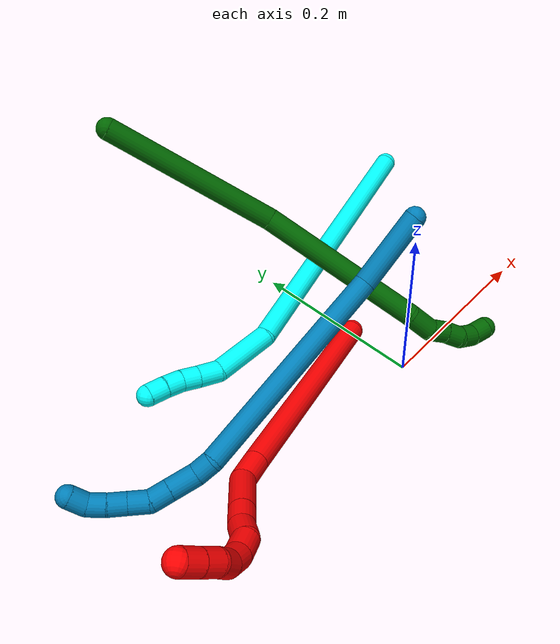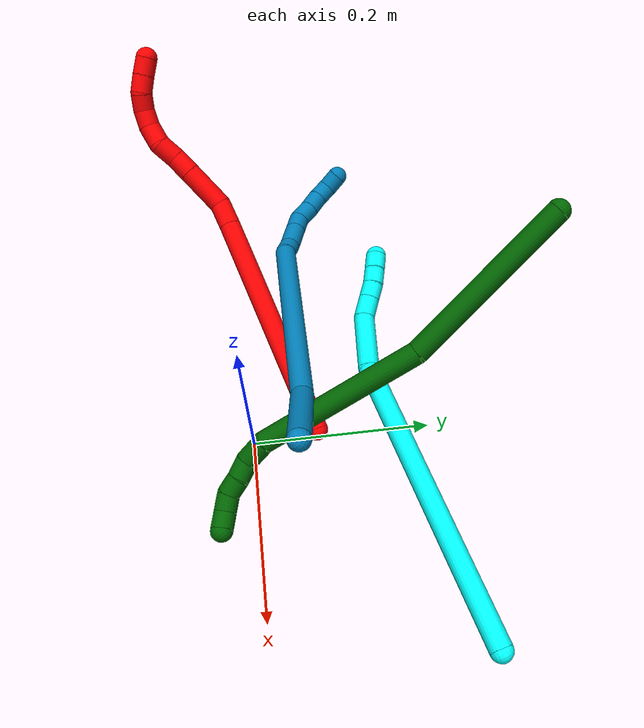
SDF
<sdf version="1.7">
 <world name="default">
  <model name="2">
   <static>0</static>
   <link name="2">
    <collision name="collision-cylinder-e_1_1_4">
     <pose>-0.053926 -0.037985 0.115306 0.318231 -0.418017 -0.068048</pose>
     <geometry><cylinder><radius>0.0125</radius><length>0.265679</length></cylinder></geometry>
     <surface>
      <friction><ode><mu>1.16</mu><mu2>1.16</mu2><slip1>0</slip1><slip2>0</slip2></ode></friction>
      <contact><ode><kp>1e+06</kp><kd>1</kd><max_vel>0</max_vel><min_depth>0.001</min_depth></ode></contact>
     </surface>
    </collision>
    <visual name="visual-cylinder-e_1_1_4">
     <pose>-0.053926 -0.037985 0.115306 0.318231 -0.418017 -0.068048</pose>
     <geometry><cylinder><radius>0.0125</radius><length>0.265679</length></cylinder></geometry>
     <material><ambient>1 0 0 1</ambient></material>
    </visual>
    <collision name="collision-cylinder-e_2_4_5">
     <pose>-0.113852 -0.079916 0.243624 0.294497 -0.415581 -0.062522</pose>
     <geometry><cylinder><radius>0.0125</radius><length>0.029725</length></cylinder></geometry>
     <surface>
      <friction><ode><mu>1.16</mu><mu2>1.16</mu2><slip1>0</slip1><slip2>0</slip2></ode></friction>
      <contact><ode><kp>1e+06</kp><kd>1</kd><max_vel>0</max_vel><min_depth>0.001</min_depth></ode></contact>
     </surface>
    </collision>
    <visual name="visual-cylinder-e_2_4_5">
     <pose>-0.113852 -0.079916 0.243624 0.294497 -0.415581 -0.062522</pose>
     <geometry><cylinder><radius>0.0125</radius><length>0.029725</length></cylinder></geometry>
     <material><ambient>1 0 0 1</ambient></material>
    </visual>
    <collision name="collision-cylinder-e_3_5_6">
     <pose>-0.134971 -0.080459 0.27771 -0.160135 -0.616204 0.051059</pose>
     <geometry><cylinder><radius>0.0125</radius><length>0.052317</length></cylinder></geometry>
     <surface>
      <friction><ode><mu>1.16</mu><mu2>1.16</mu2><slip1>0</slip1><slip2>0</slip2></ode></friction>
      <contact><ode><kp>1e+06</kp><kd>1</kd><max_vel>0</max_vel><min_depth>0.001</min_depth></ode></contact>
     </surface>
    </collision>
    <visual name="visual-cylinder-e_3_5_6">
     <pose>-0.134971 -0.080459 0.27771 -0.160135 -0.616204 0.051059</pose>
     <geometry><cylinder><radius>0.0125</radius><length>0.052317</length></cylinder></geometry>
     <material><ambient>1 0 0 1</ambient></material>
    </visual>
    <collision name="collision-cylinder-e_4_6_7">
     <pose>-0.15673 -0.075455 0.308593 -0.161731 -0.589112 0.049163</pose>
     <geometry><cylinder><radius>0.0125</radius><length>0.023907</length></cylinder></geometry>
     <surface>
      <friction><ode><mu>1.16</mu><mu2>1.16</mu2><slip1>0</slip1><slip2>0</slip2></ode></friction>
      <contact><ode><kp>1e+06</kp><kd>1</kd><max_vel>0</max_vel><min_depth>0.001</min_depth></ode></contact>
     </surface>
    </collision>
    <visual name="visual-cylinder-e_4_6_7">
     <pose>-0.15673 -0.075455 0.308593 -0.161731 -0.589112 0.049163</pose>
     <geometry><cylinder><radius>0.0125</radius><length>0.023907</length></cylinder></geometry>
     <material><ambient>1 0 0 1</ambient></material>
    </visual>
    <collision name="collision-cylinder-e_5_7_8">
     <pose>-0.171203 -0.070571 0.327071 -0.362097 -0.701468 0.133744</pose>
     <geometry><cylinder><radius>0.0125</radius><length>0.024271</length></cylinder></geometry>
     <surface>
      <friction><ode><mu>1.16</mu><mu2>1.16</mu2><slip1>0</slip1><slip2>0</slip2></ode></friction>
      <contact><ode><kp>1e+06</kp><kd>1</kd><max_vel>0</max_vel><min_depth>0.001</min_depth></ode></contact>
     </surface>
    </collision>
    <visual name="visual-cylinder-e_5_7_8">
     <pose>-0.171203 -0.070571 0.327071 -0.362097 -0.701468 0.133744</pose>
     <geometry><cylinder><radius>0.0125</radius><length>0.024271</length></cylinder></geometry>
     <material><ambient>1 0 0 1</ambient></material>
    </visual>
    <collision name="collision-cylinder-e_6_8_9">
     <pose>-0.185494 -0.068885 0.345581 0.160946 -0.574885 -0.047674</pose>
     <geometry><cylinder><radius>0.0125</radius><length>0.023758</length></cylinder></geometry>
     <surface>
      <friction><ode><mu>1.16</mu><mu2>1.16</mu2><slip1>0</slip1><slip2>0</slip2></ode></friction>
      <contact><ode><kp>1e+06</kp><kd>1</kd><max_vel>0</max_vel><min_depth>0.001</min_depth></ode></contact>
     </surface>
    </collision>
    <visual name="visual-cylinder-e_6_8_9">
     <pose>-0.185494 -0.068885 0.345581 0.160946 -0.574885 -0.047674</pose>
     <geometry><cylinder><radius>0.0125</radius><length>0.023758</length></cylinder></geometry>
     <material><ambient>1 0 0 1</ambient></material>
    </visual>
    <collision name="collision-cylinder-e_7_9_10">
     <pose>-0.199145 -0.073306 0.361899 0.411063 -0.794172 -0.17441</pose>
     <geometry><cylinder><radius>0.0125</radius><length>0.020165</length></cylinder></geometry>
     <surface>
      <friction><ode><mu>1.16</mu><mu2>1.16</mu2><slip1>0</slip1><slip2>0</slip2></ode></friction>
      <contact><ode><kp>1e+06</kp><kd>1</kd><max_vel>0</max_vel><min_depth>0.001</min_depth></ode></contact>
     </surface>
    </collision>
    <visual name="visual-cylinder-e_7_9_10">
     <pose>-0.199145 -0.073306 0.361899 0.411063 -0.794172 -0.17441</pose>
     <geometry><cylinder><radius>0.0125</radius><length>0.020165</length></cylinder></geometry>
     <material><ambient>1 0 0 1</ambient></material>
    </visual>
    <collision name="collision-cylinder-e_8_10_11">
     <pose>-0.215204 -0.079478 0.371568 0.809365 -1.09002 -0.508127</pose>
     <geometry><cylinder><radius>0.0125</radius><length>0.020003</length></cylinder></geometry>
     <surface>
      <friction><ode><mu>1.16</mu><mu2>1.16</mu2><slip1>0</slip1><slip2>0</slip2></ode></friction>
      <contact><ode><kp>1e+06</kp><kd>1</kd><max_vel>0</max_vel><min_depth>0.001</min_depth></ode></contact>
     </surface>
    </collision>
    <visual name="visual-cylinder-e_8_10_11">
     <pose>-0.215204 -0.079478 0.371568 0.809365 -1.09002 -0.508127</pose>
     <geometry><cylinder><radius>0.0125</radius><length>0.020003</length></cylinder></geometry>
     <material><ambient>1 0 0 1</ambient></material>
    </visual>
    <collision name="collision-cylinder-e_9_11_12">
     <pose>-0.230961 -0.089163 0.378314 1.0597 -0.758844 -0.458872</pose>
     <geometry><cylinder><radius>0.0125</radius><length>0.020025</length></cylinder></geometry>
     <surface>
      <friction><ode><mu>1.16</mu><mu2>1.16</mu2><slip1>0</slip1><slip2>0</slip2></ode></friction>
      <contact><ode><kp>1e+06</kp><kd>1</kd><max_vel>0</max_vel><min_depth>0.001</min_depth></ode></contact>
     </surface>
    </collision>
    <visual name="visual-cylinder-e_9_11_12">
     <pose>-0.230961 -0.089163 0.378314 1.0597 -0.758844 -0.458872</pose>
     <geometry><cylinder><radius>0.0125</radius><length>0.020025</length></cylinder></geometry>
     <material><ambient>1 0 0 1</ambient></material>
    </visual>
    <collision name="collision-cylinder-e_10_12_2">
     <pose>-0.244588 -0.102273 0.385069 1.12929 -0.732405 -0.476615</pose>
     <geometry><cylinder><radius>0.0125</radius><length>0.02015</length></cylinder></geometry>
     <surface>
      <friction><ode><mu>1.16</mu><mu2>1.16</mu2><slip1>0</slip1><slip2>0</slip2></ode></friction>
      <contact><ode><kp>1e+06</kp><kd>1</kd><max_vel>0</max_vel><min_depth>0.001</min_depth></ode></contact>
     </surface>
    </collision>
    <visual name="visual-cylinder-e_10_12_2">
     <pose>-0.244588 -0.102273 0.385069 1.12929 -0.732405 -0.476615</pose>
     <geometry><cylinder><radius>0.0125</radius><length>0.02015</length></cylinder></geometry>
     <material><ambient>1 0 0 1</ambient></material>
    </visual>
    <collision name="collision-sphere-2">
     <pose>-0.251325 -0.109047 0.38827 0 -0 0</pose>
     <geometry><sphere><radius>0.0125</radius></sphere></geometry>
     <surface>
      <friction><ode><mu>1.16</mu><mu2>1.16</mu2><slip1>0</slip1><slip2>0</slip2></ode></friction>
      <contact><ode><kp>1e+06</kp><kd>1</kd><max_vel>0</max_vel><min_depth>0.001</min_depth></ode></contact>
     </surface>
    </collision>
    <visual name="visual-sphere-2">
     <pose>-0.251325 -0.109047 0.38827 0 -0 0</pose>
     <geometry><sphere><radius>0.0125</radius></sphere></geometry>
     <material><ambient>1 0 0 1</ambient></material>
    </visual>
    <collision name="collision-sphere-12">
     <pose>-0.237851 -0.0955 0.381867 0 -0 0</pose>
     <geometry><sphere><radius>0.0125</radius></sphere></geometry>
     <surface>
      <friction><ode><mu>1.16</mu><mu2>1.16</mu2><slip1>0</slip1><slip2>0</slip2></ode></friction>
      <contact><ode><kp>1e+06</kp><kd>1</kd><max_vel>0</max_vel><min_depth>0.001</min_depth></ode></contact>
     </surface>
    </collision>
    <visual name="visual-sphere-12">
     <pose>-0.237851 -0.0955 0.381867 0 -0 0</pose>
     <geometry><sphere><radius>0.0125</radius></sphere></geometry>
     <material><ambient>1 0 0 1</ambient></material>
    </visual>
    <collision name="collision-sphere-11">
     <pose>-0.224072 -0.082826 0.37476 0 -0 0</pose>
     <geometry><sphere><radius>0.0125</radius></sphere></geometry>
     <surface>
      <friction><ode><mu>1.16</mu><mu2>1.16</mu2><slip1>0</slip1><slip2>0</slip2></ode></friction>
      <contact><ode><kp>1e+06</kp><kd>1</kd><max_vel>0</max_vel><min_depth>0.001</min_depth></ode></contact>
     </surface>
    </collision>
    <visual name="visual-sphere-11">
     <pose>-0.224072 -0.082826 0.37476 0 -0 0</pose>
     <geometry><sphere><radius>0.0125</radius></sphere></geometry>
     <material><ambient>1 0 0 1</ambient></material>
    </visual>
    <collision name="collision-sphere-10">
     <pose>-0.206336 -0.07613 0.368377 0 -0 0</pose>
     <geometry><sphere><radius>0.0125</radius></sphere></geometry>
     <surface>
      <friction><ode><mu>1.16</mu><mu2>1.16</mu2><slip1>0</slip1><slip2>0</slip2></ode></friction>
      <contact><ode><kp>1e+06</kp><kd>1</kd><max_vel>0</max_vel><min_depth>0.001</min_depth></ode></contact>
     </surface>
    </collision>
    <visual name="visual-sphere-10">
     <pose>-0.206336 -0.07613 0.368377 0 -0 0</pose>
     <geometry><sphere><radius>0.0125</radius></sphere></geometry>
     <material><ambient>1 0 0 1</ambient></material>
    </visual>
    <collision name="collision-sphere-9">
     <pose>-0.191953 -0.070483 0.355421 0 -0 0</pose>
     <geometry><sphere><radius>0.0125</radius></sphere></geometry>
     <surface>
      <friction><ode><mu>1.16</mu><mu2>1.16</mu2><slip1>0</slip1><slip2>0</slip2></ode></friction>
      <contact><ode><kp>1e+06</kp><kd>1</kd><max_vel>0</max_vel><min_depth>0.001</min_depth></ode></contact>
     </surface>
    </collision>
    <visual name="visual-sphere-9">
     <pose>-0.191953 -0.070483 0.355421 0 -0 0</pose>
     <geometry><sphere><radius>0.0125</radius></sphere></geometry>
     <material><ambient>1 0 0 1</ambient></material>
    </visual>
    <collision name="collision-sphere-4">
     <pose>-0.107852 -0.07597 0.230612 0 -0 0</pose>
     <geometry><sphere><radius>0.0125</radius></sphere></geometry>
     <surface>
      <friction><ode><mu>1.16</mu><mu2>1.16</mu2><slip1>0</slip1><slip2>0</slip2></ode></friction>
      <contact><ode><kp>1e+06</kp><kd>1</kd><max_vel>0</max_vel><min_depth>0.001</min_depth></ode></contact>
     </surface>
    </collision>
    <visual name="visual-sphere-4">
     <pose>-0.107852 -0.07597 0.230612 0 -0 0</pose>
     <geometry><sphere><radius>0.0125</radius></sphere></geometry>
     <material><ambient>1 0 0 1</ambient></material>
    </visual>
    <collision name="collision-sphere-1">
     <geometry><sphere><radius>0.0125</radius></sphere></geometry>
     <surface>
      <friction><ode><mu>1.16</mu><mu2>1.16</mu2><slip1>0</slip1><slip2>0</slip2></ode></friction>
      <contact><ode><kp>1e+06</kp><kd>1</kd><max_vel>0</max_vel><min_depth>0.001</min_depth></ode></contact>
     </surface>
    </collision>
    <visual name="visual-sphere-1">
     <geometry><sphere><radius>0.0125</radius></sphere></geometry>
     <material><ambient>1 0 0 1</ambient></material>
    </visual>
    <collision name="collision-sphere-8">
     <pose>-0.179035 -0.067287 0.33574 0 -0 0</pose>
     <geometry><sphere><radius>0.0125</radius></sphere></geometry>
     <surface>
      <friction><ode><mu>1.16</mu><mu2>1.16</mu2><slip1>0</slip1><slip2>0</slip2></ode></friction>
      <contact><ode><kp>1e+06</kp><kd>1</kd><max_vel>0</max_vel><min_depth>0.001</min_depth></ode></contact>
     </surface>
    </collision>
    <visual name="visual-sphere-8">
     <pose>-0.179035 -0.067287 0.33574 0 -0 0</pose>
     <geometry><sphere><radius>0.0125</radius></sphere></geometry>
     <material><ambient>1 0 0 1</ambient></material>
    </visual>
    <collision name="collision-sphere-5">
     <pose>-0.119853 -0.083863 0.256636 0 -0 0</pose>
     <geometry><sphere><radius>0.0125</radius></sphere></geometry>
     <surface>
      <friction><ode><mu>1.16</mu><mu2>1.16</mu2><slip1>0</slip1><slip2>0</slip2></ode></friction>
      <contact><ode><kp>1e+06</kp><kd>1</kd><max_vel>0</max_vel><min_depth>0.001</min_depth></ode></contact>
     </surface>
    </collision>
    <visual name="visual-sphere-5">
     <pose>-0.119853 -0.083863 0.256636 0 -0 0</pose>
     <geometry><sphere><radius>0.0125</radius></sphere></geometry>
     <material><ambient>1 0 0 1</ambient></material>
    </visual>
    <collision name="collision-sphere-6">
     <pose>-0.150089 -0.077056 0.298784 0 -0 0</pose>
     <geometry><sphere><radius>0.0125</radius></sphere></geometry>
     <surface>
      <friction><ode><mu>1.16</mu><mu2>1.16</mu2><slip1>0</slip1><slip2>0</slip2></ode></friction>
      <contact><ode><kp>1e+06</kp><kd>1</kd><max_vel>0</max_vel><min_depth>0.001</min_depth></ode></contact>
     </surface>
    </collision>
    <visual name="visual-sphere-6">
     <pose>-0.150089 -0.077056 0.298784 0 -0 0</pose>
     <geometry><sphere><radius>0.0125</radius></sphere></geometry>
     <material><ambient>1 0 0 1</ambient></material>
    </visual>
    <collision name="collision-sphere-7">
     <pose>-0.163372 -0.073855 0.318402 0 -0 0</pose>
     <geometry><sphere><radius>0.0125</radius></sphere></geometry>
     <surface>
      <friction><ode><mu>1.16</mu><mu2>1.16</mu2><slip1>0</slip1><slip2>0</slip2></ode></friction>
      <contact><ode><kp>1e+06</kp><kd>1</kd><max_vel>0</max_vel><min_depth>0.001</min_depth></ode></contact>
     </surface>
    </collision>
    <visual name="visual-sphere-7">
     <pose>-0.163372 -0.073855 0.318402 0 -0 0</pose>
     <geometry><sphere><radius>0.0125</radius></sphere></geometry>
     <material><ambient>1 0 0 1</ambient></material>
    </visual>
    <inertial>
     <pose>-0.109911 -0.057489 0.211993 0 -0 0</pose>
     <mass>0.5</mass>
     <inertia>
      <ixx>0.001339</ixx>
      <ixy>0</ixy>
      <ixz>0</ixz>
      <iyy>0.001425</iyy>
      <iyz>0</iyz>
      <izz>0.001137</izz>
     </inertia>
    </inertial>
   </link>
   <pose>-0.004056 0.072539 0.011873 -2.78448 1.44117 0.956356</pose>
  </model>
  <model name="3">
   <static>0</static>
   <link name="3">
    <collision name="collision-cylinder-e_1_1_4">
     <pose>-0.143132 -0.087944 0.03049 1.23707 -0.994208 -0.736984</pose>
     <geometry><cylinder><radius>0.0125</radius><length>0.34147</length></cylinder></geometry>
     <surface>
      <friction><ode><mu>1.16</mu><mu2>1.16</mu2><slip1>0</slip1><slip2>0</slip2></ode></friction>
      <contact><ode><kp>1e+06</kp><kd>1</kd><max_vel>0</max_vel><min_depth>0.001</min_depth></ode></contact>
     </surface>
    </collision>
    <visual name="visual-cylinder-e_1_1_4">
     <pose>-0.143132 -0.087944 0.03049 1.23707 -0.994208 -0.736984</pose>
     <geometry><cylinder><radius>0.0125</radius><length>0.34147</length></cylinder></geometry>
     <material><ambient>0.003922 1 0.996078 1</ambient></material>
    </visual>
    <collision name="collision-cylinder-e_2_4_5">
     <pose>-0.313141 -0.192211 0.077874 0.768242 -0.852496 -0.363043</pose>
     <geometry><cylinder><radius>0.0125</radius><length>0.071393</length></cylinder></geometry>
     <surface>
      <friction><ode><mu>1.16</mu><mu2>1.16</mu2><slip1>0</slip1><slip2>0</slip2></ode></friction>
      <contact><ode><kp>1e+06</kp><kd>1</kd><max_vel>0</max_vel><min_depth>0.001</min_depth></ode></contact>
     </surface>
    </collision>
    <visual name="visual-cylinder-e_2_4_5">
     <pose>-0.313141 -0.192211 0.077874 0.768242 -0.852496 -0.363043</pose>
     <geometry><cylinder><radius>0.0125</radius><length>0.071393</length></cylinder></geometry>
     <material><ambient>0.003922 1 0.996078 1</ambient></material>
    </visual>
    <collision name="collision-cylinder-e_3_5_6">
     <pose>-0.346307 -0.215281 0.10392 0.635128 -0.505257 -0.169292</pose>
     <geometry><cylinder><radius>0.0125</radius><length>0.025986</length></cylinder></geometry>
     <surface>
      <friction><ode><mu>1.16</mu><mu2>1.16</mu2><slip1>0</slip1><slip2>0</slip2></ode></friction>
      <contact><ode><kp>1e+06</kp><kd>1</kd><max_vel>0</max_vel><min_depth>0.001</min_depth></ode></contact>
     </surface>
    </collision>
    <visual name="visual-cylinder-e_3_5_6">
     <pose>-0.346307 -0.215281 0.10392 0.635128 -0.505257 -0.169292</pose>
     <geometry><cylinder><radius>0.0125</radius><length>0.025986</length></cylinder></geometry>
     <material><ambient>0.003922 1 0.996078 1</ambient></material>
    </visual>
    <collision name="collision-cylinder-e_4_6_7">
     <pose>-0.357179 -0.227391 0.120213 0.64434 -0.474167 -0.160962</pose>
     <geometry><cylinder><radius>0.0125</radius><length>0.020077</length></cylinder></geometry>
     <surface>
      <friction><ode><mu>1.16</mu><mu2>1.16</mu2><slip1>0</slip1><slip2>0</slip2></ode></friction>
      <contact><ode><kp>1e+06</kp><kd>1</kd><max_vel>0</max_vel><min_depth>0.001</min_depth></ode></contact>
     </surface>
    </collision>
    <visual name="visual-cylinder-e_4_6_7">
     <pose>-0.357179 -0.227391 0.120213 0.64434 -0.474167 -0.160962</pose>
     <geometry><cylinder><radius>0.0125</radius><length>0.020077</length></cylinder></geometry>
     <material><ambient>0.003922 1 0.996078 1</ambient></material>
    </visual>
    <collision name="collision-cylinder-e_5_7_8">
     <pose>-0.367479 -0.238404 0.13351 0.742379 -0.600043 -0.239672</pose>
     <geometry><cylinder><radius>0.0125</radius><length>0.020247</length></cylinder></geometry>
     <surface>
      <friction><ode><mu>1.16</mu><mu2>1.16</mu2><slip1>0</slip1><slip2>0</slip2></ode></friction>
      <contact><ode><kp>1e+06</kp><kd>1</kd><max_vel>0</max_vel><min_depth>0.001</min_depth></ode></contact>
     </surface>
    </collision>
    <visual name="visual-cylinder-e_5_7_8">
     <pose>-0.367479 -0.238404 0.13351 0.742379 -0.600043 -0.239672</pose>
     <geometry><cylinder><radius>0.0125</radius><length>0.020247</length></cylinder></geometry>
     <material><ambient>0.003922 1 0.996078 1</ambient></material>
    </visual>
    <collision name="collision-cylinder-e_6_8_2">
     <pose>-0.379693 -0.249197 0.145971 0.684515 -0.673768 -0.248279</pose>
     <geometry><cylinder><radius>0.0125</radius><length>0.020827</length></cylinder></geometry>
     <surface>
      <friction><ode><mu>1.16</mu><mu2>1.16</mu2><slip1>0</slip1><slip2>0</slip2></ode></friction>
      <contact><ode><kp>1e+06</kp><kd>1</kd><max_vel>0</max_vel><min_depth>0.001</min_depth></ode></contact>
     </surface>
    </collision>
    <visual name="visual-cylinder-e_6_8_2">
     <pose>-0.379693 -0.249197 0.145971 0.684515 -0.673768 -0.248279</pose>
     <geometry><cylinder><radius>0.0125</radius><length>0.020827</length></cylinder></geometry>
     <material><ambient>0.003922 1 0.996078 1</ambient></material>
    </visual>
    <collision name="collision-sphere-2">
     <pose>-0.38619 -0.254343 0.152275 0 -0 0</pose>
     <geometry><sphere><radius>0.0125</radius></sphere></geometry>
     <surface>
      <friction><ode><mu>1.16</mu><mu2>1.16</mu2><slip1>0</slip1><slip2>0</slip2></ode></friction>
      <contact><ode><kp>1e+06</kp><kd>1</kd><max_vel>0</max_vel><min_depth>0.001</min_depth></ode></contact>
     </surface>
    </collision>
    <visual name="visual-sphere-2">
     <pose>-0.38619 -0.254343 0.152275 0 -0 0</pose>
     <geometry><sphere><radius>0.0125</radius></sphere></geometry>
     <material><ambient>0.003922 1 0.996078 1</ambient></material>
    </visual>
    <collision name="collision-sphere-4">
     <pose>-0.286264 -0.175887 0.06098 0 -0 0</pose>
     <geometry><sphere><radius>0.0125</radius></sphere></geometry>
     <surface>
      <friction><ode><mu>1.16</mu><mu2>1.16</mu2><slip1>0</slip1><slip2>0</slip2></ode></friction>
      <contact><ode><kp>1e+06</kp><kd>1</kd><max_vel>0</max_vel><min_depth>0.001</min_depth></ode></contact>
     </surface>
    </collision>
    <visual name="visual-sphere-4">
     <pose>-0.286264 -0.175887 0.06098 0 -0 0</pose>
     <geometry><sphere><radius>0.0125</radius></sphere></geometry>
     <material><ambient>0.003922 1 0.996078 1</ambient></material>
    </visual>
    <collision name="collision-sphere-1">
     <geometry><sphere><radius>0.0125</radius></sphere></geometry>
     <surface>
      <friction><ode><mu>1.16</mu><mu2>1.16</mu2><slip1>0</slip1><slip2>0</slip2></ode></friction>
      <contact><ode><kp>1e+06</kp><kd>1</kd><max_vel>0</max_vel><min_depth>0.001</min_depth></ode></contact>
     </surface>
    </collision>
    <visual name="visual-sphere-1">
     <geometry><sphere><radius>0.0125</radius></sphere></geometry>
     <material><ambient>0.003922 1 0.996078 1</ambient></material>
    </visual>
    <collision name="collision-sphere-8">
     <pose>-0.373196 -0.244052 0.139666 0 -0 0</pose>
     <geometry><sphere><radius>0.0125</radius></sphere></geometry>
     <surface>
      <friction><ode><mu>1.16</mu><mu2>1.16</mu2><slip1>0</slip1><slip2>0</slip2></ode></friction>
      <contact><ode><kp>1e+06</kp><kd>1</kd><max_vel>0</max_vel><min_depth>0.001</min_depth></ode></contact>
     </surface>
    </collision>
    <visual name="visual-sphere-8">
     <pose>-0.373196 -0.244052 0.139666 0 -0 0</pose>
     <geometry><sphere><radius>0.0125</radius></sphere></geometry>
     <material><ambient>0.003922 1 0.996078 1</ambient></material>
    </visual>
    <collision name="collision-sphere-5">
     <pose>-0.340018 -0.208535 0.094768 0 -0 0</pose>
     <geometry><sphere><radius>0.0125</radius></sphere></geometry>
     <surface>
      <friction><ode><mu>1.16</mu><mu2>1.16</mu2><slip1>0</slip1><slip2>0</slip2></ode></friction>
      <contact><ode><kp>1e+06</kp><kd>1</kd><max_vel>0</max_vel><min_depth>0.001</min_depth></ode></contact>
     </surface>
    </collision>
    <visual name="visual-sphere-5">
     <pose>-0.340018 -0.208535 0.094768 0 -0 0</pose>
     <geometry><sphere><radius>0.0125</radius></sphere></geometry>
     <material><ambient>0.003922 1 0.996078 1</ambient></material>
    </visual>
    <collision name="collision-sphere-6">
     <pose>-0.352596 -0.222026 0.113073 0 -0 0</pose>
     <geometry><sphere><radius>0.0125</radius></sphere></geometry>
     <surface>
      <friction><ode><mu>1.16</mu><mu2>1.16</mu2><slip1>0</slip1><slip2>0</slip2></ode></friction>
      <contact><ode><kp>1e+06</kp><kd>1</kd><max_vel>0</max_vel><min_depth>0.001</min_depth></ode></contact>
     </surface>
    </collision>
    <visual name="visual-sphere-6">
     <pose>-0.352596 -0.222026 0.113073 0 -0 0</pose>
     <geometry><sphere><radius>0.0125</radius></sphere></geometry>
     <material><ambient>0.003922 1 0.996078 1</ambient></material>
    </visual>
    <collision name="collision-sphere-7">
     <pose>-0.361763 -0.232755 0.127353 0 -0 0</pose>
     <geometry><sphere><radius>0.0125</radius></sphere></geometry>
     <surface>
      <friction><ode><mu>1.16</mu><mu2>1.16</mu2><slip1>0</slip1><slip2>0</slip2></ode></friction>
      <contact><ode><kp>1e+06</kp><kd>1</kd><max_vel>0</max_vel><min_depth>0.001</min_depth></ode></contact>
     </surface>
    </collision>
    <visual name="visual-sphere-7">
     <pose>-0.361763 -0.232755 0.127353 0 -0 0</pose>
     <geometry><sphere><radius>0.0125</radius></sphere></geometry>
     <material><ambient>0.003922 1 0.996078 1</ambient></material>
    </visual>
    <inertial>
     <pose>-0.205499 -0.127858 0.053657 0 -0 0</pose>
     <mass>0.5</mass>
     <inertia>
      <ixx>0.000111</ixx>
      <ixy>0</ixy>
      <ixz>0</ixz>
      <iyy>0.001366</iyy>
      <iyz>0</iyz>
      <izz>0.004568</izz>
     </inertia>
    </inertial>
   </link>
   <pose>0.254445 0.227337 0.011498 -1.59249 -0.543196 0.443073</pose>
  </model>
  <model name="6">
   <static>0</static>
   <link name="6">
    <collision name="collision-cylinder-e_1_1_4">
     <pose>0.021197 -0.097468 -0.005709 1.6293 0.213782 0.226564</pose>
     <geometry><cylinder><radius>0.0125</radius><length>0.19982</length></cylinder></geometry>
     <surface>
      <friction><ode><mu>1.16</mu><mu2>1.16</mu2><slip1>0</slip1><slip2>0</slip2></ode></friction>
      <contact><ode><kp>1e+06</kp><kd>1</kd><max_vel>0</max_vel><min_depth>0.001</min_depth></ode></contact>
     </surface>
    </collision>
    <visual name="visual-cylinder-e_1_1_4">
     <pose>0.021197 -0.097468 -0.005709 1.6293 0.213782 0.226564</pose>
     <geometry><cylinder><radius>0.0125</radius><length>0.19982</length></cylinder></geometry>
     <material><ambient>0 0.392157 0.003922 1</ambient></material>
    </visual>
    <collision name="collision-cylinder-e_2_4_5">
     <pose>0.067136 -0.284631 0.006851 1.36987 0.263999 0.216065</pose>
     <geometry><cylinder><radius>0.0125</radius><length>0.189642</length></cylinder></geometry>
     <surface>
      <friction><ode><mu>1.16</mu><mu2>1.16</mu2><slip1>0</slip1><slip2>0</slip2></ode></friction>
      <contact><ode><kp>1e+06</kp><kd>1</kd><max_vel>0</max_vel><min_depth>0.001</min_depth></ode></contact>
     </surface>
    </collision>
    <visual name="visual-cylinder-e_2_4_5">
     <pose>0.067136 -0.284631 0.006851 1.36987 0.263999 0.216065</pose>
     <geometry><cylinder><radius>0.0125</radius><length>0.189642</length></cylinder></geometry>
     <material><ambient>0 0.392157 0.003922 1</ambient></material>
    </visual>
    <collision name="collision-cylinder-e_3_5_6">
     <pose>0.092713 -0.388967 0.024391 1.6205 0.05686 0.059757</pose>
     <geometry><cylinder><radius>0.0125</radius><length>0.029366</length></cylinder></geometry>
     <surface>
      <friction><ode><mu>1.16</mu><mu2>1.16</mu2><slip1>0</slip1><slip2>0</slip2></ode></friction>
      <contact><ode><kp>1e+06</kp><kd>1</kd><max_vel>0</max_vel><min_depth>0.001</min_depth></ode></contact>
     </surface>
    </collision>
    <visual name="visual-cylinder-e_3_5_6">
     <pose>0.092713 -0.388967 0.024391 1.6205 0.05686 0.059757</pose>
     <geometry><cylinder><radius>0.0125</radius><length>0.029366</length></cylinder></geometry>
     <material><ambient>0 0.392157 0.003922 1</ambient></material>
    </visual>
    <collision name="collision-cylinder-e_4_6_7">
     <pose>0.096647 -0.412549 0.019427 2.01325 0.303594 0.474399</pose>
     <geometry><cylinder><radius>0.0125</radius><length>0.020736</length></cylinder></geometry>
     <surface>
      <friction><ode><mu>1.16</mu><mu2>1.16</mu2><slip1>0</slip1><slip2>0</slip2></ode></friction>
      <contact><ode><kp>1e+06</kp><kd>1</kd><max_vel>0</max_vel><min_depth>0.001</min_depth></ode></contact>
     </surface>
    </collision>
    <visual name="visual-cylinder-e_4_6_7">
     <pose>0.096647 -0.412549 0.019427 2.01325 0.303594 0.474399</pose>
     <geometry><cylinder><radius>0.0125</radius><length>0.020736</length></cylinder></geometry>
     <material><ambient>0 0.392157 0.003922 1</ambient></material>
    </visual>
    <collision name="collision-cylinder-e_5_7_8">
     <pose>0.10216 -0.43102 0.012545 1.84161 0.239316 0.313724</pose>
     <geometry><cylinder><radius>0.0125</radius><length>0.020361</length></cylinder></geometry>
     <surface>
      <friction><ode><mu>1.16</mu><mu2>1.16</mu2><slip1>0</slip1><slip2>0</slip2></ode></friction>
      <contact><ode><kp>1e+06</kp><kd>1</kd><max_vel>0</max_vel><min_depth>0.001</min_depth></ode></contact>
     </surface>
    </collision>
    <visual name="visual-cylinder-e_5_7_8">
     <pose>0.10216 -0.43102 0.012545 1.84161 0.239316 0.313724</pose>
     <geometry><cylinder><radius>0.0125</radius><length>0.020361</length></cylinder></geometry>
     <material><ambient>0 0.392157 0.003922 1</ambient></material>
    </visual>
    <collision name="collision-cylinder-e_6_8_9">
     <pose>0.107432 -0.447592 0.00339 2.31687 0.289703 0.643744</pose>
     <geometry><cylinder><radius>0.0125</radius><length>0.020013</length></cylinder></geometry>
     <surface>
      <friction><ode><mu>1.16</mu><mu2>1.16</mu2><slip1>0</slip1><slip2>0</slip2></ode></friction>
      <contact><ode><kp>1e+06</kp><kd>1</kd><max_vel>0</max_vel><min_depth>0.001</min_depth></ode></contact>
     </surface>
    </collision>
    <visual name="visual-cylinder-e_6_8_9">
     <pose>0.107432 -0.447592 0.00339 2.31687 0.289703 0.643744</pose>
     <geometry><cylinder><radius>0.0125</radius><length>0.020013</length></cylinder></geometry>
     <material><ambient>0 0.392157 0.003922 1</ambient></material>
    </visual>
    <collision name="collision-cylinder-e_7_9_2">
     <pose>0.115904 -0.459335 -0.009975 2.54056 0.593912 1.55814</pose>
     <geometry><cylinder><radius>0.0125</radius><length>0.020062</length></cylinder></geometry>
     <surface>
      <friction><ode><mu>1.16</mu><mu2>1.16</mu2><slip1>0</slip1><slip2>0</slip2></ode></friction>
      <contact><ode><kp>1e+06</kp><kd>1</kd><max_vel>0</max_vel><min_depth>0.001</min_depth></ode></contact>
     </surface>
    </collision>
    <visual name="visual-cylinder-e_7_9_2">
     <pose>0.115904 -0.459335 -0.009975 2.54056 0.593912 1.55814</pose>
     <geometry><cylinder><radius>0.0125</radius><length>0.020062</length></cylinder></geometry>
     <material><ambient>0 0.392157 0.003922 1</ambient></material>
    </visual>
    <collision name="collision-sphere-2">
     <pose>0.121517 -0.464036 -0.016832 0 -0 0</pose>
     <geometry><sphere><radius>0.0125</radius></sphere></geometry>
     <surface>
      <friction><ode><mu>1.16</mu><mu2>1.16</mu2><slip1>0</slip1><slip2>0</slip2></ode></friction>
      <contact><ode><kp>1e+06</kp><kd>1</kd><max_vel>0</max_vel><min_depth>0.001</min_depth></ode></contact>
     </surface>
    </collision>
    <visual name="visual-sphere-2">
     <pose>0.121517 -0.464036 -0.016832 0 -0 0</pose>
     <geometry><sphere><radius>0.0125</radius></sphere></geometry>
     <material><ambient>0 0.392157 0.003922 1</ambient></material>
    </visual>
    <collision name="collision-sphere-9">
     <pose>0.11029 -0.454634 -0.003119 0 -0 0</pose>
     <geometry><sphere><radius>0.0125</radius></sphere></geometry>
     <surface>
      <friction><ode><mu>1.16</mu><mu2>1.16</mu2><slip1>0</slip1><slip2>0</slip2></ode></friction>
      <contact><ode><kp>1e+06</kp><kd>1</kd><max_vel>0</max_vel><min_depth>0.001</min_depth></ode></contact>
     </surface>
    </collision>
    <visual name="visual-sphere-9">
     <pose>0.11029 -0.454634 -0.003119 0 -0 0</pose>
     <geometry><sphere><radius>0.0125</radius></sphere></geometry>
     <material><ambient>0 0.392157 0.003922 1</ambient></material>
    </visual>
    <collision name="collision-sphere-4">
     <pose>0.042393 -0.194937 -0.011418 0 -0 0</pose>
     <geometry><sphere><radius>0.0125</radius></sphere></geometry>
     <surface>
      <friction><ode><mu>1.16</mu><mu2>1.16</mu2><slip1>0</slip1><slip2>0</slip2></ode></friction>
      <contact><ode><kp>1e+06</kp><kd>1</kd><max_vel>0</max_vel><min_depth>0.001</min_depth></ode></contact>
     </surface>
    </collision>
    <visual name="visual-sphere-4">
     <pose>0.042393 -0.194937 -0.011418 0 -0 0</pose>
     <geometry><sphere><radius>0.0125</radius></sphere></geometry>
     <material><ambient>0 0.392157 0.003922 1</ambient></material>
    </visual>
    <collision name="collision-sphere-1">
     <geometry><sphere><radius>0.0125</radius></sphere></geometry>
     <surface>
      <friction><ode><mu>1.16</mu><mu2>1.16</mu2><slip1>0</slip1><slip2>0</slip2></ode></friction>
      <contact><ode><kp>1e+06</kp><kd>1</kd><max_vel>0</max_vel><min_depth>0.001</min_depth></ode></contact>
     </surface>
    </collision>
    <visual name="visual-sphere-1">
     <geometry><sphere><radius>0.0125</radius></sphere></geometry>
     <material><ambient>0 0.392157 0.003922 1</ambient></material>
    </visual>
    <collision name="collision-sphere-8">
     <pose>0.104573 -0.44055 0.009899 0 -0 0</pose>
     <geometry><sphere><radius>0.0125</radius></sphere></geometry>
     <surface>
      <friction><ode><mu>1.16</mu><mu2>1.16</mu2><slip1>0</slip1><slip2>0</slip2></ode></friction>
      <contact><ode><kp>1e+06</kp><kd>1</kd><max_vel>0</max_vel><min_depth>0.001</min_depth></ode></contact>
     </surface>
    </collision>
    <visual name="visual-sphere-8">
     <pose>0.104573 -0.44055 0.009899 0 -0 0</pose>
     <geometry><sphere><radius>0.0125</radius></sphere></geometry>
     <material><ambient>0 0.392157 0.003922 1</ambient></material>
    </visual>
    <collision name="collision-sphere-5">
     <pose>0.091879 -0.374325 0.02512 0 -0 0</pose>
     <geometry><sphere><radius>0.0125</radius></sphere></geometry>
     <surface>
      <friction><ode><mu>1.16</mu><mu2>1.16</mu2><slip1>0</slip1><slip2>0</slip2></ode></friction>
      <contact><ode><kp>1e+06</kp><kd>1</kd><max_vel>0</max_vel><min_depth>0.001</min_depth></ode></contact>
     </surface>
    </collision>
    <visual name="visual-sphere-5">
     <pose>0.091879 -0.374325 0.02512 0 -0 0</pose>
     <geometry><sphere><radius>0.0125</radius></sphere></geometry>
     <material><ambient>0 0.392157 0.003922 1</ambient></material>
    </visual>
    <collision name="collision-sphere-6">
     <pose>0.093548 -0.403608 0.023663 0 -0 0</pose>
     <geometry><sphere><radius>0.0125</radius></sphere></geometry>
     <surface>
      <friction><ode><mu>1.16</mu><mu2>1.16</mu2><slip1>0</slip1><slip2>0</slip2></ode></friction>
      <contact><ode><kp>1e+06</kp><kd>1</kd><max_vel>0</max_vel><min_depth>0.001</min_depth></ode></contact>
     </surface>
    </collision>
    <visual name="visual-sphere-6">
     <pose>0.093548 -0.403608 0.023663 0 -0 0</pose>
     <geometry><sphere><radius>0.0125</radius></sphere></geometry>
     <material><ambient>0 0.392157 0.003922 1</ambient></material>
    </visual>
    <collision name="collision-sphere-7">
     <pose>0.099747 -0.42149 0.015191 0 -0 0</pose>
     <geometry><sphere><radius>0.0125</radius></sphere></geometry>
     <surface>
      <friction><ode><mu>1.16</mu><mu2>1.16</mu2><slip1>0</slip1><slip2>0</slip2></ode></friction>
      <contact><ode><kp>1e+06</kp><kd>1</kd><max_vel>0</max_vel><min_depth>0.001</min_depth></ode></contact>
     </surface>
    </collision>
    <visual name="visual-sphere-7">
     <pose>0.099747 -0.42149 0.015191 0 -0 0</pose>
     <geometry><sphere><radius>0.0125</radius></sphere></geometry>
     <material><ambient>0 0.392157 0.003922 1</ambient></material>
    </visual>
    <inertial>
     <pose>0.056499 -0.24076 0.002801 0 -0 0</pose>
     <mass>0.5</mass>
     <inertia><ixx>0.00147</ixx><ixy>0</ixy><ixz>0</ixz><iyy>0.00037</iyy><iyz>0</iyz><izz>0.000912</izz></inertia>
    </inertial>
   </link>
   <pose>-0.108026 0.329523 0.234886 1.28838 -0.807814 -0.787568</pose>
  </model>
  <model name="9">
   <static>0</static>
   <link name="9">
    <collision name="collision-cylinder-e_1_1_4">
     <pose>-0.036216 -0.006269 -0.025285 2.89856 -0.947231 -2.67378</pose>
     <geometry><cylinder><radius>0.0125</radius><length>0.089224</length></cylinder></geometry>
     <surface>
      <friction><ode><mu>1.16</mu><mu2>1.16</mu2><slip1>0</slip1><slip2>0</slip2></ode></friction>
      <contact><ode><kp>1e+06</kp><kd>1</kd><max_vel>0</max_vel><min_depth>0.001</min_depth></ode></contact>
     </surface>
    </collision>
    <visual name="visual-cylinder-e_1_1_4">
     <pose>-0.036216 -0.006269 -0.025285 2.89856 -0.947231 -2.67378</pose>
     <geometry><cylinder><radius>0.0125</radius><length>0.089224</length></cylinder></geometry>
     <material><ambient>0 0.490196 0.709804 1</ambient></material>
    </visual>
    <collision name="collision-cylinder-e_2_4_5">
     <pose>-0.192886 -0.013593 -0.087234 3.11282 -1.27521 -3.10275</pose>
     <geometry><cylinder><radius>0.0125</radius><length>0.251829</length></cylinder></geometry>
     <surface>
      <friction><ode><mu>1.16</mu><mu2>1.16</mu2><slip1>0</slip1><slip2>0</slip2></ode></friction>
      <contact><ode><kp>1e+06</kp><kd>1</kd><max_vel>0</max_vel><min_depth>0.001</min_depth></ode></contact>
     </surface>
    </collision>
    <visual name="visual-cylinder-e_2_4_5">
     <pose>-0.192886 -0.013593 -0.087234 3.11282 -1.27521 -3.10275</pose>
     <geometry><cylinder><radius>0.0125</radius><length>0.251829</length></cylinder></geometry>
     <material><ambient>0 0.490196 0.709804 1</ambient></material>
    </visual>
    <collision name="collision-cylinder-e_3_5_6">
     <pose>-0.321697 -0.013775 -0.130246 -3.00488 -0.916666 2.86582</pose>
     <geometry><cylinder><radius>0.0125</radius><length>0.021062</length></cylinder></geometry>
     <surface>
      <friction><ode><mu>1.16</mu><mu2>1.16</mu2><slip1>0</slip1><slip2>0</slip2></ode></friction>
      <contact><ode><kp>1e+06</kp><kd>1</kd><max_vel>0</max_vel><min_depth>0.001</min_depth></ode></contact>
     </surface>
    </collision>
    <visual name="visual-cylinder-e_3_5_6">
     <pose>-0.321697 -0.013775 -0.130246 -3.00488 -0.916666 2.86582</pose>
     <geometry><cylinder><radius>0.0125</radius><length>0.021062</length></cylinder></geometry>
     <material><ambient>0 0.490196 0.709804 1</ambient></material>
    </visual>
    <collision name="collision-cylinder-e_4_6_7">
     <pose>-0.343827 -0.008134 -0.142773 -2.48437 -1.05525 2.08276</pose>
     <geometry><cylinder><radius>0.0125</radius><length>0.031661</length></cylinder></geometry>
     <surface>
      <friction><ode><mu>1.16</mu><mu2>1.16</mu2><slip1>0</slip1><slip2>0</slip2></ode></friction>
      <contact><ode><kp>1e+06</kp><kd>1</kd><max_vel>0</max_vel><min_depth>0.001</min_depth></ode></contact>
     </surface>
    </collision>
    <visual name="visual-cylinder-e_4_6_7">
     <pose>-0.343827 -0.008134 -0.142773 -2.48437 -1.05525 2.08276</pose>
     <geometry><cylinder><radius>0.0125</radius><length>0.031661</length></cylinder></geometry>
     <material><ambient>0 0.490196 0.709804 1</ambient></material>
    </visual>
    <collision name="collision-cylinder-e_5_7_8">
     <pose>-0.367157 -7.5e-05 -0.153194 -2.48182 -1.05888 2.08276</pose>
     <geometry><cylinder><radius>0.0125</radius><length>0.021926</length></cylinder></geometry>
     <surface>
      <friction><ode><mu>1.16</mu><mu2>1.16</mu2><slip1>0</slip1><slip2>0</slip2></ode></friction>
      <contact><ode><kp>1e+06</kp><kd>1</kd><max_vel>0</max_vel><min_depth>0.001</min_depth></ode></contact>
     </surface>
    </collision>
    <visual name="visual-cylinder-e_5_7_8">
     <pose>-0.367157 -7.5e-05 -0.153194 -2.48182 -1.05888 2.08276</pose>
     <geometry><cylinder><radius>0.0125</radius><length>0.021926</length></cylinder></geometry>
     <material><ambient>0 0.490196 0.709804 1</ambient></material>
    </visual>
    <collision name="collision-cylinder-e_6_8_9">
     <pose>-0.383474 0.01069 -0.162503 -2.16651 -0.642675 1.1212</pose>
     <geometry><cylinder><radius>0.0125</radius><length>0.022557</length></cylinder></geometry>
     <surface>
      <friction><ode><mu>1.16</mu><mu2>1.16</mu2><slip1>0</slip1><slip2>0</slip2></ode></friction>
      <contact><ode><kp>1e+06</kp><kd>1</kd><max_vel>0</max_vel><min_depth>0.001</min_depth></ode></contact>
     </surface>
    </collision>
    <visual name="visual-cylinder-e_6_8_9">
     <pose>-0.383474 0.01069 -0.162503 -2.16651 -0.642675 1.1212</pose>
     <geometry><cylinder><radius>0.0125</radius><length>0.022557</length></cylinder></geometry>
     <material><ambient>0 0.490196 0.709804 1</ambient></material>
    </visual>
    <collision name="collision-cylinder-e_7_9_10">
     <pose>-0.396933 0.025346 -0.171256 -2.045 -0.692701 1.0674</pose>
     <geometry><cylinder><radius>0.0125</radius><length>0.020983</length></cylinder></geometry>
     <surface>
      <friction><ode><mu>1.16</mu><mu2>1.16</mu2><slip1>0</slip1><slip2>0</slip2></ode></friction>
      <contact><ode><kp>1e+06</kp><kd>1</kd><max_vel>0</max_vel><min_depth>0.001</min_depth></ode></contact>
     </surface>
    </collision>
    <visual name="visual-cylinder-e_7_9_10">
     <pose>-0.396933 0.025346 -0.171256 -2.045 -0.692701 1.0674</pose>
     <geometry><cylinder><radius>0.0125</radius><length>0.020983</length></cylinder></geometry>
     <material><ambient>0 0.490196 0.709804 1</ambient></material>
    </visual>
    <collision name="collision-cylinder-e_8_10_11">
     <pose>-0.409009 0.040005 -0.178884 -2.05598 -0.566499 0.899123</pose>
     <geometry><cylinder><radius>0.0125</radius><length>0.020034</length></cylinder></geometry>
     <surface>
      <friction><ode><mu>1.16</mu><mu2>1.16</mu2><slip1>0</slip1><slip2>0</slip2></ode></friction>
      <contact><ode><kp>1e+06</kp><kd>1</kd><max_vel>0</max_vel><min_depth>0.001</min_depth></ode></contact>
     </surface>
    </collision>
    <visual name="visual-cylinder-e_8_10_11">
     <pose>-0.409009 0.040005 -0.178884 -2.05598 -0.566499 0.899123</pose>
     <geometry><cylinder><radius>0.0125</radius><length>0.020034</length></cylinder></geometry>
     <material><ambient>0 0.490196 0.709804 1</ambient></material>
    </visual>
    <collision name="collision-cylinder-e_9_11_2">
     <pose>-0.417474 0.057363 -0.183286 -1.61734 -0.302649 0.316839</pose>
     <geometry><cylinder><radius>0.0125</radius><length>0.020725</length></cylinder></geometry>
     <surface>
      <friction><ode><mu>1.16</mu><mu2>1.16</mu2><slip1>0</slip1><slip2>0</slip2></ode></friction>
      <contact><ode><kp>1e+06</kp><kd>1</kd><max_vel>0</max_vel><min_depth>0.001</min_depth></ode></contact>
     </surface>
    </collision>
    <visual name="visual-cylinder-e_9_11_2">
     <pose>-0.417474 0.057363 -0.183286 -1.61734 -0.302649 0.316839</pose>
     <geometry><cylinder><radius>0.0125</radius><length>0.020725</length></cylinder></geometry>
     <material><ambient>0 0.490196 0.709804 1</ambient></material>
    </visual>
    <collision name="collision-sphere-2">
     <pose>-0.420562 0.067244 -0.183746 0 -0 0</pose>
     <geometry><sphere><radius>0.0125</radius></sphere></geometry>
     <surface>
      <friction><ode><mu>1.16</mu><mu2>1.16</mu2><slip1>0</slip1><slip2>0</slip2></ode></friction>
      <contact><ode><kp>1e+06</kp><kd>1</kd><max_vel>0</max_vel><min_depth>0.001</min_depth></ode></contact>
     </surface>
    </collision>
    <visual name="visual-sphere-2">
     <pose>-0.420562 0.067244 -0.183746 0 -0 0</pose>
     <geometry><sphere><radius>0.0125</radius></sphere></geometry>
     <material><ambient>0 0.490196 0.709804 1</ambient></material>
    </visual>
    <collision name="collision-sphere-11">
     <pose>-0.414385 0.047482 -0.182826 0 -0 0</pose>
     <geometry><sphere><radius>0.0125</radius></sphere></geometry>
     <surface>
      <friction><ode><mu>1.16</mu><mu2>1.16</mu2><slip1>0</slip1><slip2>0</slip2></ode></friction>
      <contact><ode><kp>1e+06</kp><kd>1</kd><max_vel>0</max_vel><min_depth>0.001</min_depth></ode></contact>
     </surface>
    </collision>
    <visual name="visual-sphere-11">
     <pose>-0.414385 0.047482 -0.182826 0 -0 0</pose>
     <geometry><sphere><radius>0.0125</radius></sphere></geometry>
     <material><ambient>0 0.490196 0.709804 1</ambient></material>
    </visual>
    <collision name="collision-sphere-10">
     <pose>-0.403633 0.032528 -0.174942 0 -0 0</pose>
     <geometry><sphere><radius>0.0125</radius></sphere></geometry>
     <surface>
      <friction><ode><mu>1.16</mu><mu2>1.16</mu2><slip1>0</slip1><slip2>0</slip2></ode></friction>
      <contact><ode><kp>1e+06</kp><kd>1</kd><max_vel>0</max_vel><min_depth>0.001</min_depth></ode></contact>
     </surface>
    </collision>
    <visual name="visual-sphere-10">
     <pose>-0.403633 0.032528 -0.174942 0 -0 0</pose>
     <geometry><sphere><radius>0.0125</radius></sphere></geometry>
     <material><ambient>0 0.490196 0.709804 1</ambient></material>
    </visual>
    <collision name="collision-sphere-9">
     <pose>-0.390233 0.018163 -0.167569 0 -0 0</pose>
     <geometry><sphere><radius>0.0125</radius></sphere></geometry>
     <surface>
      <friction><ode><mu>1.16</mu><mu2>1.16</mu2><slip1>0</slip1><slip2>0</slip2></ode></friction>
      <contact><ode><kp>1e+06</kp><kd>1</kd><max_vel>0</max_vel><min_depth>0.001</min_depth></ode></contact>
     </surface>
    </collision>
    <visual name="visual-sphere-9">
     <pose>-0.390233 0.018163 -0.167569 0 -0 0</pose>
     <geometry><sphere><radius>0.0125</radius></sphere></geometry>
     <material><ambient>0 0.490196 0.709804 1</ambient></material>
    </visual>
    <collision name="collision-sphere-4">
     <pose>-0.072432 -0.012538 -0.05057 0 -0 0</pose>
     <geometry><sphere><radius>0.0125</radius></sphere></geometry>
     <surface>
      <friction><ode><mu>1.16</mu><mu2>1.16</mu2><slip1>0</slip1><slip2>0</slip2></ode></friction>
      <contact><ode><kp>1e+06</kp><kd>1</kd><max_vel>0</max_vel><min_depth>0.001</min_depth></ode></contact>
     </surface>
    </collision>
    <visual name="visual-sphere-4">
     <pose>-0.072432 -0.012538 -0.05057 0 -0 0</pose>
     <geometry><sphere><radius>0.0125</radius></sphere></geometry>
     <material><ambient>0 0.490196 0.709804 1</ambient></material>
    </visual>
    <collision name="collision-sphere-1">
     <geometry><sphere><radius>0.0125</radius></sphere></geometry>
     <surface>
      <friction><ode><mu>1.16</mu><mu2>1.16</mu2><slip1>0</slip1><slip2>0</slip2></ode></friction>
      <contact><ode><kp>1e+06</kp><kd>1</kd><max_vel>0</max_vel><min_depth>0.001</min_depth></ode></contact>
     </surface>
    </collision>
    <visual name="visual-sphere-1">
     <geometry><sphere><radius>0.0125</radius></sphere></geometry>
     <material><ambient>0 0.490196 0.709804 1</ambient></material>
    </visual>
    <collision name="collision-sphere-8">
     <pose>-0.376714 0.003217 -0.157437 0 -0 0</pose>
     <geometry><sphere><radius>0.0125</radius></sphere></geometry>
     <surface>
      <friction><ode><mu>1.16</mu><mu2>1.16</mu2><slip1>0</slip1><slip2>0</slip2></ode></friction>
      <contact><ode><kp>1e+06</kp><kd>1</kd><max_vel>0</max_vel><min_depth>0.001</min_depth></ode></contact>
     </surface>
    </collision>
    <visual name="visual-sphere-8">
     <pose>-0.376714 0.003217 -0.157437 0 -0 0</pose>
     <geometry><sphere><radius>0.0125</radius></sphere></geometry>
     <material><ambient>0 0.490196 0.709804 1</ambient></material>
    </visual>
    <collision name="collision-sphere-5">
     <pose>-0.31334 -0.014649 -0.123898 0 -0 0</pose>
     <geometry><sphere><radius>0.0125</radius></sphere></geometry>
     <surface>
      <friction><ode><mu>1.16</mu><mu2>1.16</mu2><slip1>0</slip1><slip2>0</slip2></ode></friction>
      <contact><ode><kp>1e+06</kp><kd>1</kd><max_vel>0</max_vel><min_depth>0.001</min_depth></ode></contact>
     </surface>
    </collision>
    <visual name="visual-sphere-5">
     <pose>-0.31334 -0.014649 -0.123898 0 -0 0</pose>
     <geometry><sphere><radius>0.0125</radius></sphere></geometry>
     <material><ambient>0 0.490196 0.709804 1</ambient></material>
    </visual>
    <collision name="collision-sphere-6">
     <pose>-0.330054 -0.012902 -0.136594 0 -0 0</pose>
     <geometry><sphere><radius>0.0125</radius></sphere></geometry>
     <surface>
      <friction><ode><mu>1.16</mu><mu2>1.16</mu2><slip1>0</slip1><slip2>0</slip2></ode></friction>
      <contact><ode><kp>1e+06</kp><kd>1</kd><max_vel>0</max_vel><min_depth>0.001</min_depth></ode></contact>
     </surface>
    </collision>
    <visual name="visual-sphere-6">
     <pose>-0.330054 -0.012902 -0.136594 0 -0 0</pose>
     <geometry><sphere><radius>0.0125</radius></sphere></geometry>
     <material><ambient>0 0.490196 0.709804 1</ambient></material>
    </visual>
    <collision name="collision-sphere-7">
     <pose>-0.357599 -0.003366 -0.148951 0 -0 0</pose>
     <geometry><sphere><radius>0.0125</radius></sphere></geometry>
     <surface>
      <friction><ode><mu>1.16</mu><mu2>1.16</mu2><slip1>0</slip1><slip2>0</slip2></ode></friction>
      <contact><ode><kp>1e+06</kp><kd>1</kd><max_vel>0</max_vel><min_depth>0.001</min_depth></ode></contact>
     </surface>
    </collision>
    <visual name="visual-sphere-7">
     <pose>-0.357599 -0.003366 -0.148951 0 -0 0</pose>
     <geometry><sphere><radius>0.0125</radius></sphere></geometry>
     <material><ambient>0 0.490196 0.709804 1</ambient></material>
    </visual>
    <inertial>
     <pose>-0.222684 -0.003537 -0.098976 0 -0 0</pose>
     <mass>0.5</mass>
     <inertia>
      <ixx>-0.00048</ixx>
      <ixy>0</ixy>
      <ixz>0</ixz>
      <iyy>0.001388</iyy>
      <iyz>0</iyz>
      <izz>0.001342</izz>
     </inertia>
    </inertial>
   </link>
   <pose>0.069917 0.050277 0.152788 0.657849 -0.047506 0.178431</pose>
  </model>
 </world>
</sdf>
